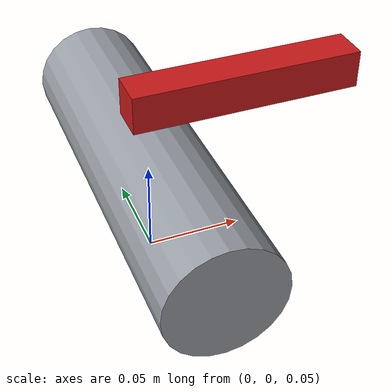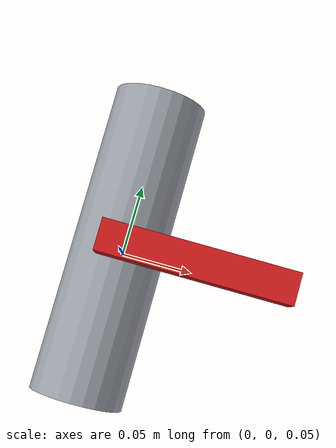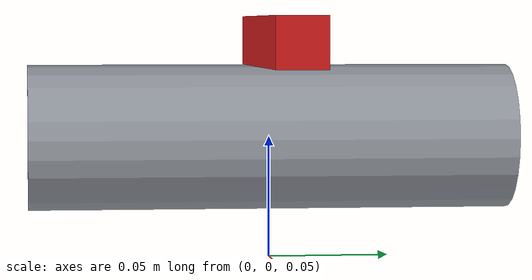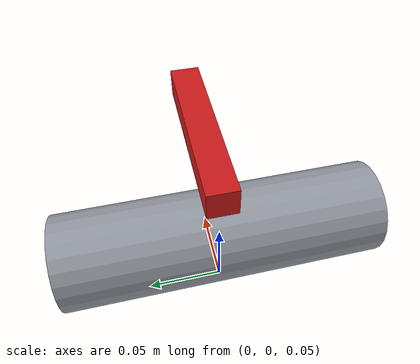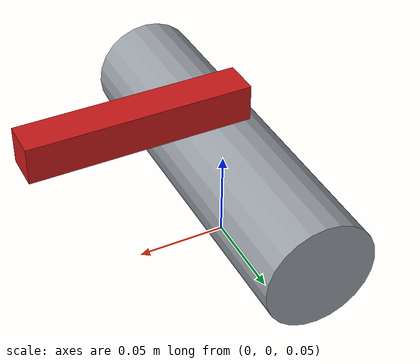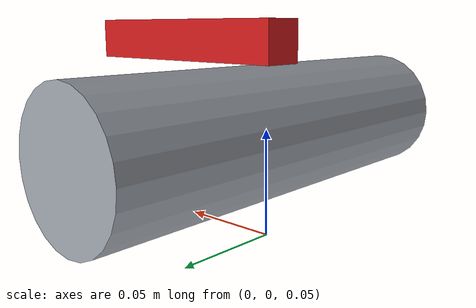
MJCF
<?xml version="1.0" encoding="utf-8"?>
<mujoco model="pipeline_valve_actuator">
  <compiler angle="radian" autolimits="true"/>
  <default>
    <default class="body"><geom contype="1" conaffinity="1"/></default>
  </default>
  <worldbody>
    <body name="base">
      <geom type="cylinder" size="0.03 0.10" pos="0 0 0.10" rgba="0.6 0.62 0.65 1" class="body" quat="0.7071068 0.7071068 0 0"/>
      <body name="valve_lever" pos="0 0 0.14">
        <joint name="valve_lever_joint" type="hinge" axis="0 1 0" range="-1.0 0" damping="0.3" frictionloss="0.3"/>
  <geom type="box" size="0.06 0.01 0.01" pos="0.05 0 0" rgba="0.8 0.1 0.1 1" class="body"/>
      </body>
    </body>
  </worldbody>
</mujoco>
